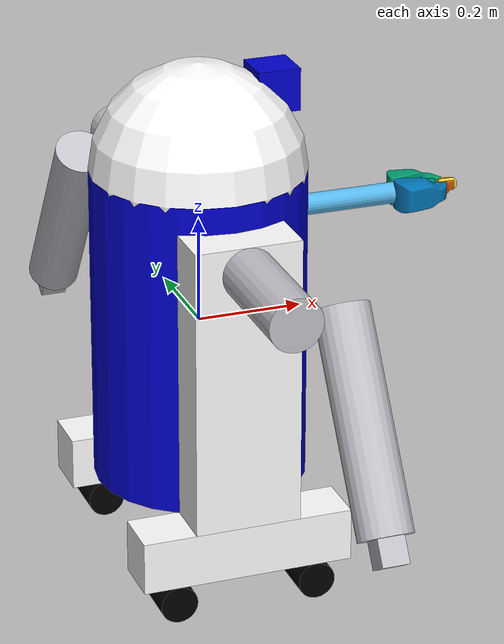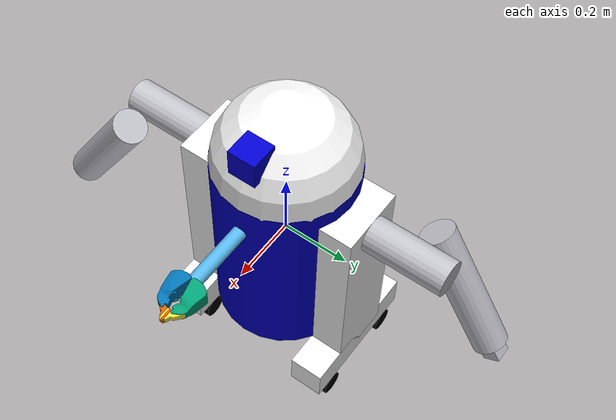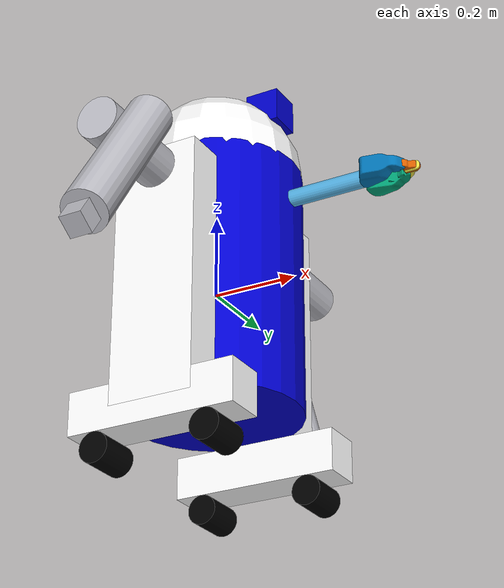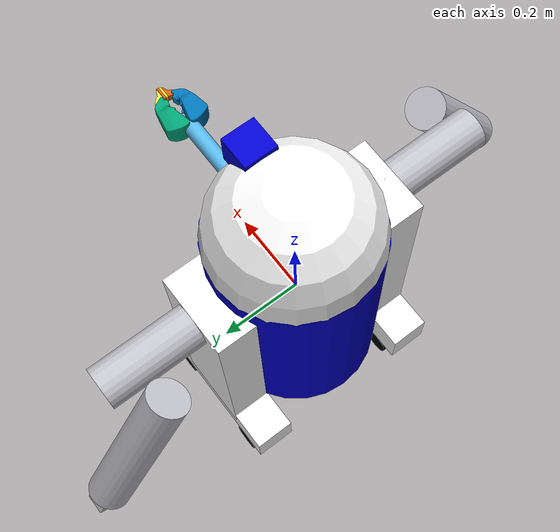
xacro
<?xml version="1.0"?>
<robot name="roscontrol" xmlns:xacro="http://ros.org/wiki/xacro">

  <xacro:property name="width" value="0.2" />
  <xacro:property name="leglen" value="0.6" />
  <xacro:property name="polelen" value="0.2" />
  <xacro:property name="bodylen" value="0.6" />
  <xacro:property name="baselen" value="0.4" />
  <xacro:property name="wheeldiam" value="0.07" />
  <xacro:property name="pi" value="3.1415" />

  <material name="blue">
    <color rgba="0 0 0.8 1"/>
  </material>

  <material name="black">
    <color rgba="0 0 0 1"/>
  </material>

  <material name="white">
    <color rgba="1 1 1 1"/>
  </material>

  <xacro:macro name="default_inertial" params="mass">
    <inertial>
      <mass value="${mass}" />
      <inertia ixx="1.0" ixy="0.0" ixz="0.0" iyy="1.0" iyz="0.0" izz="1.0" />
    </inertial>
  </xacro:macro>

  <link name="base_link">
    <visual>
      <geometry>
        <cylinder radius="${width}" length="${bodylen}"/>
      </geometry>
      <material name="blue"/>
    </visual>
    <collision>
      <geometry>
        <cylinder radius="${width}" length="${bodylen}"/>
      </geometry>
    </collision>
    <xacro:default_inertial mass="10"/>
  </link>

  <xacro:macro name="wheel" params="prefix suffix reflect">

    <link name="${prefix}_${suffix}_wheel">
      <visual>
        <origin xyz="0 0 0" rpy="${pi/2} 0 0" />
        <geometry>
          <cylinder radius="${wheeldiam/2}" length="0.1"/>
        </geometry>
        <material name="black"/>
      </visual>
      <collision>
        <origin xyz="0 0 0" rpy="${pi/2} 0 0" />
        <geometry>
          <cylinder radius="${wheeldiam/2}" length="0.1"/>
        </geometry>
      </collision>
      <xacro:default_inertial mass="1"/>
    </link>
    <joint name="${prefix}_${suffix}_wheel_joint" type="continuous">
      <axis xyz="0 1 0" rpy="0 0 0" />
      <parent link="${prefix}_base"/>
      <child link="${prefix}_${suffix}_wheel"/>
      <origin xyz="${baselen*reflect/3} 0 -${wheeldiam/2+.05}" rpy="0 0 0"/>
    </joint>

    <!-- This block provides the simulator (Gazebo) with information on a few additional
    physical properties. See http://gazebosim.org/tutorials/?tut=ros_urdf for more-->
    <gazebo reference="${prefix}_${suffix}_wheel">
      <mu1 value="200.0"/>
      <mu2 value="100.0"/>
      <kp value="10000000.0" />
      <kd value="1.0" />
      <material>Gazebo/Grey</material>
    </gazebo>

    <!-- This block connects the wheel joint to an actuator (motor), which informs both
    simulation and visualization of the robot -->
    <transmission name="${prefix}_${suffix}_wheel_trans">
      <type>transmission_interface/SimpleTransmission</type>
      <actuator name="${prefix}_${suffix}_wheel_motor">
        <mechanicalReduction>1</mechanicalReduction>
      </actuator>
      <joint name="${prefix}_${suffix}_wheel_joint">
        <hardwareInterface>VelocityJointInterface</hardwareInterface>
      </joint>
    </transmission>

  </xacro:macro>

  <xacro:macro name="leg" params="prefix reflect">
    <link name="${prefix}_leg">
      <visual>
        <geometry>
          <box size="${leglen} 0.1 0.2"/>
        </geometry>
        <origin xyz="0 0 -${leglen/2}" rpy="0 ${pi/2} 0"/>
        <material name="white"/>
      </visual>
      <collision>
        <geometry>
          <box size="${leglen} 0.1 0.2"/>
        </geometry>
        <origin xyz="0 0 -${leglen/2}" rpy="0 ${pi/2} 0"/>
      </collision>
      <xacro:default_inertial mass="10"/>
    </link>

    <joint name="base_to_${prefix}_leg" type="fixed">
      <parent link="base_link"/>
      <child link="${prefix}_leg"/>
      <origin xyz="0 ${reflect*(width+.02)} 0.25" />
    </joint>

    <link name="${prefix}_base">
      <visual>
        <geometry>
          <box size="${baselen} 0.1 0.1"/>
        </geometry>
        <material name="white"/>
      </visual>
      <collision>
        <geometry>
          <box size="${baselen} 0.1 0.1"/>
        </geometry>
      </collision>
      <xacro:default_inertial mass="10"/>
    </link>

    <joint name="${prefix}_base_joint" type="fixed">
      <parent link="${prefix}_leg"/>
      <child link="${prefix}_base"/>
      <origin xyz="0 0 ${-leglen}" />
    </joint>
    <xacro:wheel prefix="${prefix}" suffix="front" reflect="1"/>
    <xacro:wheel prefix="${prefix}" suffix="back" reflect="-1"/>
  </xacro:macro>
  <xacro:leg prefix="right" reflect="-1" />
  <xacro:leg prefix="left" reflect="1" />

  <joint name="gripper_extension" type="prismatic">
    <parent link="base_link"/>
    <child link="gripper_pole"/>
    <limit effort="1000.0" lower="-${width*2-.02}" upper="0" velocity="0.5"/>
    <origin rpy="0 0 0" xyz="${width-.01} 0 0.2"/>
    <limit effort="30" velocity="0.2"/>
    <dynamics damping="0.0" friction="0.0"/>
  </joint>

  <link name="gripper_pole">
    <visual>
      <geometry>
        <cylinder length="${polelen}" radius="0.02"/>
      </geometry>
      <origin xyz="${polelen/2} 0 0" rpy="0 ${pi/2} 0 "/>
    </visual>
    <collision>
      <geometry>
        <cylinder length="${polelen}" radius="0.01"/>
      </geometry>
      <origin xyz="${polelen/2} 0 0" rpy="0 ${pi/2} 0 "/>
    </collision>
    <xacro:default_inertial mass="0.05"/>
  </link>

  <transmission name="gripper_extension_trans">
    <type>transmission_interface/SimpleTransmission</type>
    <actuator name="gripper_extension_motor">
      <mechanicalReduction>1</mechanicalReduction>
    </actuator>
    <joint name="gripper_extension">
      <hardwareInterface>PositionJointInterface</hardwareInterface>
    </joint>
  </transmission>

  <xacro:macro name="gripper" params="prefix reflect">
    <joint name="${prefix}_gripper_joint" type="revolute">
      <axis xyz="0 0 ${reflect}"/>
      <limit effort="1000.0" lower="0.0" upper="0.548" velocity="0.5"/>
      <origin rpy="0 0 0" xyz="${polelen} ${reflect*0.01} 0"/>
      <parent link="gripper_pole"/>
      <child link="${prefix}_gripper"/>
      <limit effort="30" velocity="1.0"/>
      <dynamics damping="0.0" friction="0.0"/>
    </joint>
    <link name="${prefix}_gripper">
      <visual>
        <origin rpy="${(reflect-1)/2*pi} 0 0" xyz="0 0 0"/>
        <geometry>
          <mesh filename="package://urdf_tutorial/meshes/l_finger.dae"/>
        </geometry>
      </visual>
      <collision>
        <geometry>
          <mesh filename="package://urdf_tutorial/meshes/l_finger.dae"/>
        </geometry>
        <origin rpy="${(reflect-1)/2*pi} 0 0" xyz="0 0 0"/>
      </collision>
      <xacro:default_inertial mass="0.05"/>
    </link>
    <transmission name="${prefix}_gripper_trans">
      <type>transmission_interface/SimpleTransmission</type>
      <actuator name="${prefix}_gripper_motor">
        <mechanicalReduction>1</mechanicalReduction>
      </actuator>
      <joint name="${prefix}_gripper_joint">
        <hardwareInterface>PositionJointInterface</hardwareInterface>
      </joint>
    </transmission>

    <joint name="${prefix}_tip_joint" type="fixed">
      <parent link="${prefix}_gripper"/>
      <child link="${prefix}_tip"/>
    </joint>
    <link name="${prefix}_tip">
      <visual>
        <origin rpy="${(reflect-1)/2*pi} 0 0" xyz="0.09137 0.00495 0"/>
        <geometry>
          <mesh filename="package://urdf_tutorial/meshes/l_finger_tip.dae"/>
        </geometry>
      </visual>
      <collision>
        <geometry>
          <mesh filename="package://urdf_tutorial/meshes/l_finger_tip.dae"/>
        </geometry>
        <origin rpy="${(reflect-1)/2*pi} 0 0" xyz="0.09137 0.00495 0"/>
      </collision>
      <xacro:default_inertial mass="0.05"/>
    </link>
  </xacro:macro>

  <xacro:gripper prefix="left" reflect="1" />
  <xacro:gripper prefix="right" reflect="-1" />

<!-- DOUBLE ARM -->
 <xacro:macro name="arm" params="prefix reflect">
   <link name="${prefix}_upper_arm">
     <visual>
       <geometry>
         <cylinder length="0.4" radius="0.05"/>
       </geometry>
       <material name="silver"/>
       <origin rpy="0 0 1.5708" xyz="0.1 0 ${0.3+(0.1*reflect)}"/>
     </visual>

     <inertial>
      <mass value="1.0"/>
      <origin rpy="0 0 0" xyz="0 0 0.25"/>
      <inertia ixx="0.01396" iyy="0.01396" izz="0.00125" ixy="0" ixz="0" iyz="0"/>
     </inertial>
   </link>

   <joint name="${prefix}_shoulder" type="continuous">
     <axis xyz="0 1 0"/>
     <parent link="base_link"/>
     <child link="${prefix}_upper_arm"/>
     <origin rpy="${(reflect-1)*1.5708} 1.5708 1.5708" xyz="0 -0.1 0.3"/>
   </joint>

  <link name="${prefix}_lower_arm">
    <visual>
      <geometry>
        <cylinder length="0.4" radius="0.05"/>
      </geometry>
      <material name="silver"/>
      <origin rpy="0 0 0" xyz="0 0 0.2"/>
    </visual>

    <inertial>
     <mass value="1.0"/>
     <origin rpy="0 0 0" xyz="0 0 0.25"/>
     <inertia ixx="0.01396" iyy="0.01396" izz="0.00125" ixy="0" ixz="0" iyz="0"/>
    </inertial>
  </link>

  <joint name="${prefix}_elbow" type="continuous">
    <axis xyz="0 1 0"/>
    <parent link="${prefix}_upper_arm"/>
    <child link="${prefix}_lower_arm"/>
    <origin rpy="0 1 0" xyz="0.1 0.1 ${0.5+(0.075*(reflect-1))}"/>
  </joint>

  <link name="${prefix}_hand">
    <visual>
      <geometry>
        <box size="0.05 0.05 0.05"/>
      </geometry>
      <material name="silver"/>
    </visual>

    <inertial>
     <mass value="1.0"/>
     <origin rpy="0 0 0" xyz="0 0 0.25"/>
     <inertia ixx="0.00042" iyy="0.00042" izz="0.00042" ixy="0" ixz="0" iyz="0"/>
    </inertial>
  </link>

  <joint name="${prefix}_wrist" type="continuous">
    <axis xyz="0 1 0"/>
    <parent link="${prefix}_lower_arm"/>
    <child link="${prefix}_hand"/>
    <origin rpy="0 0 0" xyz="0.0 0.0 0.425"/>
  </joint>

  <transmission name="${prefix}_tran1">
    <type>transmission_interface/SimpleTransmission</type>
    <joint name="${prefix}_shoulder">
      <hardwareInterface>PositionJointInterface</hardwareInterface>
    </joint>
    <actuator name="${prefix}_motor1">
      <hardwareInterface>PositionJointInterface</hardwareInterface>
      <mechanicalReduction>1</mechanicalReduction>
    </actuator>
  </transmission>

  <transmission name="${prefix}_tran2">
    <type>transmission_interface/SimpleTransmission</type>
    <joint name="${prefix}_elbow">
      <hardwareInterface>PositionJointInterface</hardwareInterface>
    </joint>
    <actuator name="${prefix}_motor2">
      <hardwareInterface>PositionJointInterface</hardwareInterface>
      <mechanicalReduction>1</mechanicalReduction>
    </actuator>
  </transmission>

  <transmission name="${prefix}_tran3">
    <type>transmission_interface/SimpleTransmission</type>
    <joint name="${prefix}_wrist">
      <hardwareInterface>PositionJointInterface</hardwareInterface>
    </joint>
    <actuator name="${prefix}_motor3">
      <hardwareInterface>PositionJointInterface</hardwareInterface>
      <mechanicalReduction>1</mechanicalReduction>
    </actuator>
  </transmission>
 </xacro:macro>

  <xacro:arm prefix="left" reflect="1" />
  <xacro:arm prefix="right" reflect="-1" />

  <link name="head">
    <visual>
      <geometry>
        <sphere radius="${width}"/>
      </geometry>
      <material name="white"/>
    </visual>
    <collision>
      <geometry>
        <sphere radius="${width}"/>
      </geometry>
    </collision>
    <xacro:default_inertial mass="2"/>
  </link>

  <joint name="head_swivel" type="continuous">
    <parent link="base_link"/>
    <child link="head"/>
    <axis xyz="0 0 1"/>
    <origin xyz="0 0 ${bodylen/2}"/>
    <limit effort="30" velocity="1.0"/>
    <dynamics damping="0.0" friction="0.0"/>
  </joint>

  <!-- This block connects the head_swivel joint to an actuator (motor), which informs both
  simulation and visualization of the robot -->
  <transmission name="head_swivel_trans">
    <type>transmission_interface/SimpleTransmission</type>
    <actuator name="$head_swivel_motor">
      <mechanicalReduction>1</mechanicalReduction>
    </actuator>
    <joint name="head_swivel">
      <hardwareInterface>PositionJointInterface</hardwareInterface>
    </joint>
  </transmission>

  <link name="box">
    <visual>
      <geometry>
        <box size="0.08 0.08 0.08"/>
      </geometry>
      <material name="blue"/>
      <origin xyz="-0.04 0 0"/>
    </visual>
    <collision>
      <geometry>
        <box size="0.08 0.08 0.08"/>
      </geometry>
    </collision>
    <xacro:default_inertial mass="1"/>
  </link>

  <joint name="tobox" type="fixed">
    <parent link="head"/>
    <child link="box"/>
    <origin xyz="${.707*width+0.04} 0 ${.707*width}"/>
  </joint>

  <!-- Gazebo plugin for ROS Control -->
  <gazebo>
    <plugin name="gazebo_ros_control" filename="libgazebo_ros_control.so">
      <robotNamespace>/</robotNamespace>
    </plugin>
  </gazebo>

</robot>
